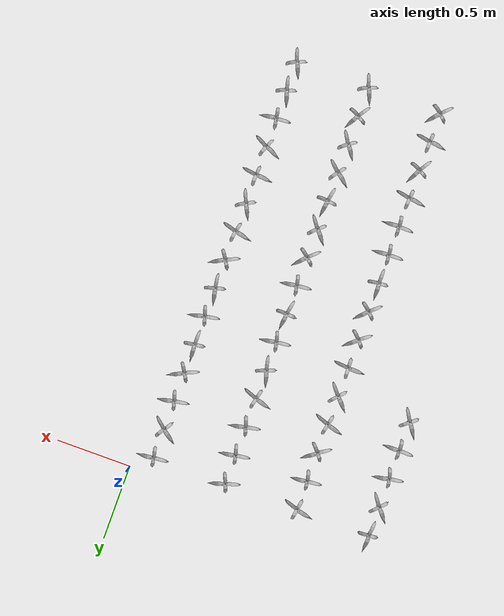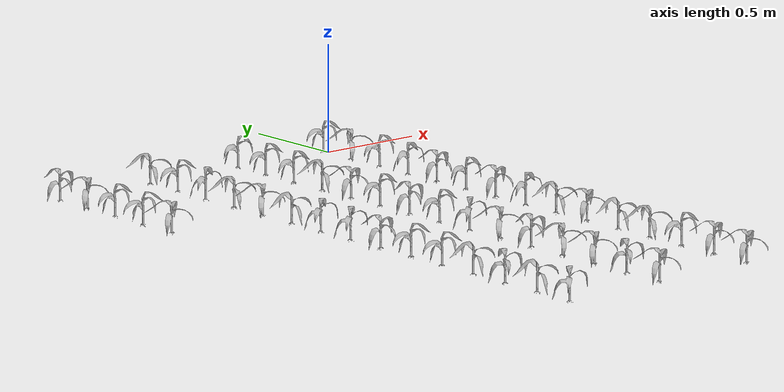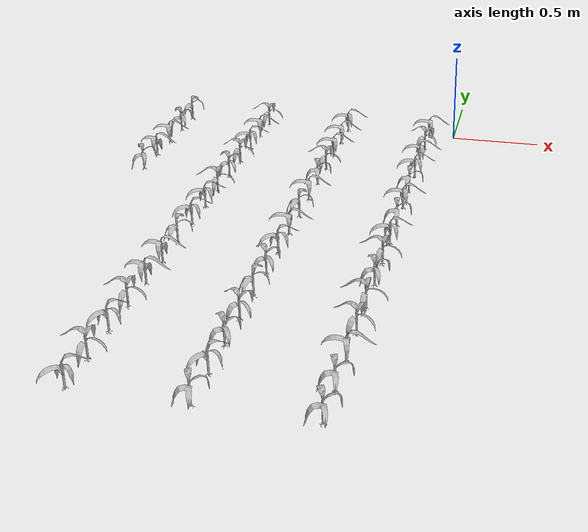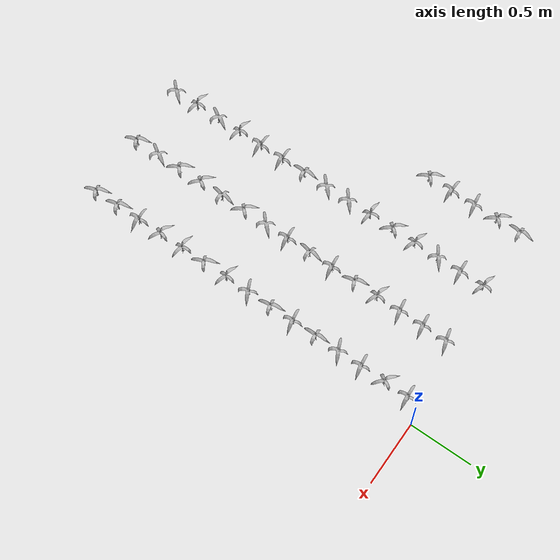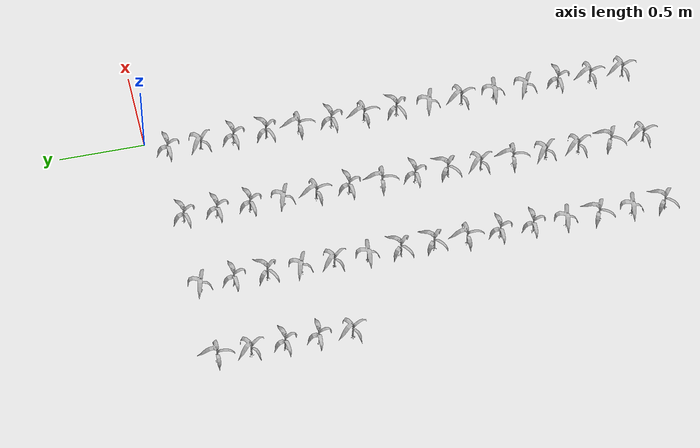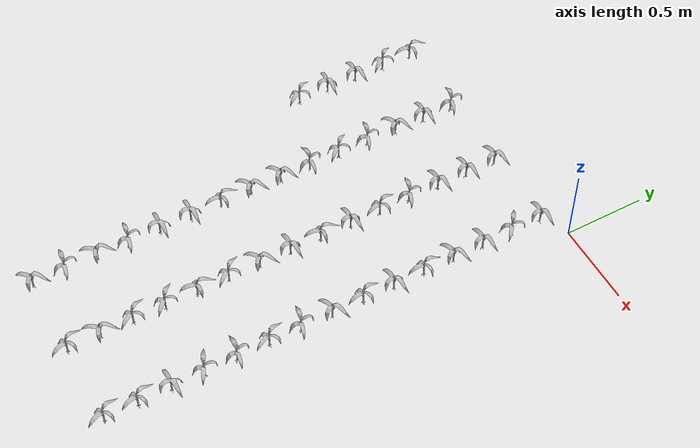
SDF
<sdf version="1.7">
 <world name="default">
  <model name="maize_-1.6134747127982658_-0.8999999999999995">
   <static>1</static>
   <link name="link">
    <inertial>
     <mass>0.2</mass>
     <inertia>
      <ixx>0.166667</ixx>
      <ixy>0</ixy>
      <ixz>0</ixz>
      <iyy>0.166667</iyy>
      <iyz>0</iyz>
      <izz>0.166667</izz>
     </inertia>
    </inertial>
    <collision name="collision">
     <geometry><mesh><uri>model://corn_3/meshes/corn.dae</uri><scale>0.25 0.25 0.25</scale></mesh></geometry>
     <surface>
      <friction><ode><mu>0</mu><mu2>0</mu2></ode></friction>
      <contact><ode><kp>0</kp><kd>0</kd><max_vel>0</max_vel><min_depth>0.002</min_depth></ode></contact>
     </surface>
    </collision>
    <visual name="visual">
     <geometry><mesh><uri>model://corn_3/meshes/corn.dae</uri><scale>0.25 0.25 0.25</scale></mesh></geometry>
    </visual>
    <velocity_decay><linear>0</linear><angular>0</angular></velocity_decay>
   </link>
   <pose>-1.61347 -0.9 0.05 0 -0 2.18641</pose>
  </model>
  <model name="maize_-1.6134747127982658_-0.7050000000000001">
   <static>1</static>
   <link name="link">
    <inertial>
     <mass>0.2</mass>
     <inertia>
      <ixx>0.166667</ixx>
      <ixy>0</ixy>
      <ixz>0</ixz>
      <iyy>0.166667</iyy>
      <iyz>0</iyz>
      <izz>0.166667</izz>
     </inertia>
    </inertial>
    <collision name="collision">
     <geometry><mesh><uri>model://corn_3/meshes/corn.dae</uri><scale>0.25 0.25 0.25</scale></mesh></geometry>
     <surface>
      <friction><ode><mu>0</mu><mu2>0</mu2></ode></friction>
      <contact><ode><kp>0</kp><kd>0</kd><max_vel>0</max_vel><min_depth>0.002</min_depth></ode></contact>
     </surface>
    </collision>
    <visual name="visual">
     <geometry><mesh><uri>model://corn_3/meshes/corn.dae</uri><scale>0.25 0.25 0.25</scale></mesh></geometry>
    </visual>
    <velocity_decay><linear>0</linear><angular>0</angular></velocity_decay>
   </link>
   <pose>-1.61347 -0.705 0.05 0 -0 0.046199</pose>
  </model>
  <model name="maize_-1.6134747127982658_-0.5099999999999998">
   <static>1</static>
   <link name="link">
    <inertial>
     <mass>0.2</mass>
     <inertia>
      <ixx>0.166667</ixx>
      <ixy>0</ixy>
      <ixz>0</ixz>
      <iyy>0.166667</iyy>
      <iyz>0</iyz>
      <izz>0.166667</izz>
     </inertia>
    </inertial>
    <collision name="collision">
     <geometry><mesh><uri>model://corn_3/meshes/corn.dae</uri><scale>0.25 0.25 0.25</scale></mesh></geometry>
     <surface>
      <friction><ode><mu>0</mu><mu2>0</mu2></ode></friction>
      <contact><ode><kp>0</kp><kd>0</kd><max_vel>0</max_vel><min_depth>0.002</min_depth></ode></contact>
     </surface>
    </collision>
    <visual name="visual">
     <geometry><mesh><uri>model://corn_3/meshes/corn.dae</uri><scale>0.25 0.25 0.25</scale></mesh></geometry>
    </visual>
    <velocity_decay><linear>0</linear><angular>0</angular></velocity_decay>
   </link>
   <pose>-1.61347 -0.51 0.05 0 -0 0.232341</pose>
  </model>
  <model name="maize_-1.6134747127982658_-0.3149999999999995">
   <static>1</static>
   <link name="link">
    <inertial>
     <mass>0.2</mass>
     <inertia>
      <ixx>0.166667</ixx>
      <ixy>0</ixy>
      <ixz>0</ixz>
      <iyy>0.166667</iyy>
      <iyz>0</iyz>
      <izz>0.166667</izz>
     </inertia>
    </inertial>
    <collision name="collision">
     <geometry><mesh><uri>model://corn_3/meshes/corn.dae</uri><scale>0.25 0.25 0.25</scale></mesh></geometry>
     <surface>
      <friction><ode><mu>0</mu><mu2>0</mu2></ode></friction>
      <contact><ode><kp>0</kp><kd>0</kd><max_vel>0</max_vel><min_depth>0.002</min_depth></ode></contact>
     </surface>
    </collision>
    <visual name="visual">
     <geometry><mesh><uri>model://corn_3/meshes/corn.dae</uri><scale>0.25 0.25 0.25</scale></mesh></geometry>
    </visual>
    <velocity_decay><linear>0</linear><angular>0</angular></velocity_decay>
   </link>
   <pose>-1.61347 -0.315 0.05 0 -0 2.28942</pose>
  </model>
  <model name="maize_-1.6134747127982658_-0.1200000000000001">
   <static>1</static>
   <link name="link">
    <inertial>
     <mass>0.2</mass>
     <inertia>
      <ixx>0.166667</ixx>
      <ixy>0</ixy>
      <ixz>0</ixz>
      <iyy>0.166667</iyy>
      <iyz>0</iyz>
      <izz>0.166667</izz>
     </inertia>
    </inertial>
    <collision name="collision">
     <geometry><mesh><uri>model://corn_3/meshes/corn.dae</uri><scale>0.25 0.25 0.25</scale></mesh></geometry>
     <surface>
      <friction><ode><mu>0</mu><mu2>0</mu2></ode></friction>
      <contact><ode><kp>0</kp><kd>0</kd><max_vel>0</max_vel><min_depth>0.002</min_depth></ode></contact>
     </surface>
    </collision>
    <visual name="visual">
     <geometry><mesh><uri>model://corn_3/meshes/corn.dae</uri><scale>0.25 0.25 0.25</scale></mesh></geometry>
    </visual>
    <velocity_decay><linear>0</linear><angular>0</angular></velocity_decay>
   </link>
   <pose>-1.61347 -0.12 0.05 0 -0 1.56511</pose>
  </model>
  <model name="maize_-1.1183337078909452_-2.8499999999999996">
   <static>1</static>
   <link name="link">
    <inertial>
     <mass>0.2</mass>
     <inertia>
      <ixx>0.166667</ixx>
      <ixy>0</ixy>
      <ixz>0</ixz>
      <iyy>0.166667</iyy>
      <iyz>0</iyz>
      <izz>0.166667</izz>
     </inertia>
    </inertial>
    <collision name="collision">
     <geometry><mesh><uri>model://corn_3/meshes/corn.dae</uri><scale>0.25 0.25 0.25</scale></mesh></geometry>
     <surface>
      <friction><ode><mu>0</mu><mu2>0</mu2></ode></friction>
      <contact><ode><kp>0</kp><kd>0</kd><max_vel>0</max_vel><min_depth>0.002</min_depth></ode></contact>
     </surface>
    </collision>
    <visual name="visual">
     <geometry><mesh><uri>model://corn_3/meshes/corn.dae</uri><scale>0.25 0.25 0.25</scale></mesh></geometry>
    </visual>
    <velocity_decay><linear>0</linear><angular>0</angular></velocity_decay>
   </link>
   <pose>-1.11833 -2.85 0.05 0 -0 0.887774</pose>
  </model>
  <model name="maize_-1.1183337078909452_-2.655">
   <static>1</static>
   <link name="link">
    <inertial>
     <mass>0.2</mass>
     <inertia>
      <ixx>0.166667</ixx>
      <ixy>0</ixy>
      <ixz>0</ixz>
      <iyy>0.166667</iyy>
      <iyz>0</iyz>
      <izz>0.166667</izz>
     </inertia>
    </inertial>
    <collision name="collision">
     <geometry><mesh><uri>model://corn_3/meshes/corn.dae</uri><scale>0.25 0.25 0.25</scale></mesh></geometry>
     <surface>
      <friction><ode><mu>0</mu><mu2>0</mu2></ode></friction>
      <contact><ode><kp>0</kp><kd>0</kd><max_vel>0</max_vel><min_depth>0.002</min_depth></ode></contact>
     </surface>
    </collision>
    <visual name="visual">
     <geometry><mesh><uri>model://corn_3/meshes/corn.dae</uri><scale>0.25 0.25 0.25</scale></mesh></geometry>
    </visual>
    <velocity_decay><linear>0</linear><angular>0</angular></velocity_decay>
   </link>
   <pose>-1.11833 -2.655 0.05 0 -0 3.03803</pose>
  </model>
  <model name="maize_-1.1183337078909452_-2.46">
   <static>1</static>
   <link name="link">
    <inertial>
     <mass>0.2</mass>
     <inertia>
      <ixx>0.166667</ixx>
      <ixy>0</ixy>
      <ixz>0</ixz>
      <iyy>0.166667</iyy>
      <iyz>0</iyz>
      <izz>0.166667</izz>
     </inertia>
    </inertial>
    <collision name="collision">
     <geometry><mesh><uri>model://corn_3/meshes/corn.dae</uri><scale>0.25 0.25 0.25</scale></mesh></geometry>
     <surface>
      <friction><ode><mu>0</mu><mu2>0</mu2></ode></friction>
      <contact><ode><kp>0</kp><kd>0</kd><max_vel>0</max_vel><min_depth>0.002</min_depth></ode></contact>
     </surface>
    </collision>
    <visual name="visual">
     <geometry><mesh><uri>model://corn_3/meshes/corn.dae</uri><scale>0.25 0.25 0.25</scale></mesh></geometry>
    </visual>
    <velocity_decay><linear>0</linear><angular>0</angular></velocity_decay>
   </link>
   <pose>-1.11833 -2.46 0.05 0 -0 1.11207</pose>
  </model>
  <model name="maize_-1.1183337078909452_-2.2649999999999997">
   <static>1</static>
   <link name="link">
    <inertial>
     <mass>0.2</mass>
     <inertia>
      <ixx>0.166667</ixx>
      <ixy>0</ixy>
      <ixz>0</ixz>
      <iyy>0.166667</iyy>
      <iyz>0</iyz>
      <izz>0.166667</izz>
     </inertia>
    </inertial>
    <collision name="collision">
     <geometry><mesh><uri>model://corn_3/meshes/corn.dae</uri><scale>0.25 0.25 0.25</scale></mesh></geometry>
     <surface>
      <friction><ode><mu>0</mu><mu2>0</mu2></ode></friction>
      <contact><ode><kp>0</kp><kd>0</kd><max_vel>0</max_vel><min_depth>0.002</min_depth></ode></contact>
     </surface>
    </collision>
    <visual name="visual">
     <geometry><mesh><uri>model://corn_3/meshes/corn.dae</uri><scale>0.25 0.25 0.25</scale></mesh></geometry>
    </visual>
    <velocity_decay><linear>0</linear><angular>0</angular></velocity_decay>
   </link>
   <pose>-1.11833 -2.265 0.05 0 -0 3.02245</pose>
  </model>
  <model name="maize_-1.1183337078909452_-2.07">
   <static>1</static>
   <link name="link">
    <inertial>
     <mass>0.2</mass>
     <inertia>
      <ixx>0.166667</ixx>
      <ixy>0</ixy>
      <ixz>0</ixz>
      <iyy>0.166667</iyy>
      <iyz>0</iyz>
      <izz>0.166667</izz>
     </inertia>
    </inertial>
    <collision name="collision">
     <geometry><mesh><uri>model://corn_3/meshes/corn.dae</uri><scale>0.25 0.25 0.25</scale></mesh></geometry>
     <surface>
      <friction><ode><mu>0</mu><mu2>0</mu2></ode></friction>
      <contact><ode><kp>0</kp><kd>0</kd><max_vel>0</max_vel><min_depth>0.002</min_depth></ode></contact>
     </surface>
    </collision>
    <visual name="visual">
     <geometry><mesh><uri>model://corn_3/meshes/corn.dae</uri><scale>0.25 0.25 0.25</scale></mesh></geometry>
    </visual>
    <velocity_decay><linear>0</linear><angular>0</angular></velocity_decay>
   </link>
   <pose>-1.11833 -2.07 0.05 0 -0 0.065517</pose>
  </model>
  <model name="maize_-1.1183337078909452_-1.8749999999999996">
   <static>1</static>
   <link name="link">
    <inertial>
     <mass>0.2</mass>
     <inertia>
      <ixx>0.166667</ixx>
      <ixy>0</ixy>
      <ixz>0</ixz>
      <iyy>0.166667</iyy>
      <iyz>0</iyz>
      <izz>0.166667</izz>
     </inertia>
    </inertial>
    <collision name="collision">
     <geometry><mesh><uri>model://corn_3/meshes/corn.dae</uri><scale>0.25 0.25 0.25</scale></mesh></geometry>
     <surface>
      <friction><ode><mu>0</mu><mu2>0</mu2></ode></friction>
      <contact><ode><kp>0</kp><kd>0</kd><max_vel>0</max_vel><min_depth>0.002</min_depth></ode></contact>
     </surface>
    </collision>
    <visual name="visual">
     <geometry><mesh><uri>model://corn_3/meshes/corn.dae</uri><scale>0.25 0.25 0.25</scale></mesh></geometry>
    </visual>
    <velocity_decay><linear>0</linear><angular>0</angular></velocity_decay>
   </link>
   <pose>-1.11833 -1.875 0.05 0 -0 0.109168</pose>
  </model>
  <model name="maize_-1.1183337078909452_-1.6799999999999997">
   <static>1</static>
   <link name="link">
    <inertial>
     <mass>0.2</mass>
     <inertia>
      <ixx>0.166667</ixx>
      <ixy>0</ixy>
      <ixz>0</ixz>
      <iyy>0.166667</iyy>
      <iyz>0</iyz>
      <izz>0.166667</izz>
     </inertia>
    </inertial>
    <collision name="collision">
     <geometry><mesh><uri>model://corn_3/meshes/corn.dae</uri><scale>0.25 0.25 0.25</scale></mesh></geometry>
     <surface>
      <friction><ode><mu>0</mu><mu2>0</mu2></ode></friction>
      <contact><ode><kp>0</kp><kd>0</kd><max_vel>0</max_vel><min_depth>0.002</min_depth></ode></contact>
     </surface>
    </collision>
    <visual name="visual">
     <geometry><mesh><uri>model://corn_3/meshes/corn.dae</uri><scale>0.25 0.25 0.25</scale></mesh></geometry>
    </visual>
    <velocity_decay><linear>0</linear><angular>0</angular></velocity_decay>
   </link>
   <pose>-1.11833 -1.68 0.05 0 -0 1.6509</pose>
  </model>
  <model name="maize_-1.1183337078909452_-1.4849999999999999">
   <static>1</static>
   <link name="link">
    <inertial>
     <mass>0.2</mass>
     <inertia>
      <ixx>0.166667</ixx>
      <ixy>0</ixy>
      <ixz>0</ixz>
      <iyy>0.166667</iyy>
      <iyz>0</iyz>
      <izz>0.166667</izz>
     </inertia>
    </inertial>
    <collision name="collision">
     <geometry><mesh><uri>model://corn_3/meshes/corn.dae</uri><scale>0.25 0.25 0.25</scale></mesh></geometry>
     <surface>
      <friction><ode><mu>0</mu><mu2>0</mu2></ode></friction>
      <contact><ode><kp>0</kp><kd>0</kd><max_vel>0</max_vel><min_depth>0.002</min_depth></ode></contact>
     </surface>
    </collision>
    <visual name="visual">
     <geometry><mesh><uri>model://corn_3/meshes/corn.dae</uri><scale>0.25 0.25 0.25</scale></mesh></geometry>
    </visual>
    <velocity_decay><linear>0</linear><angular>0</angular></velocity_decay>
   </link>
   <pose>-1.11833 -1.485 0.05 0 -0 0.815342</pose>
  </model>
  <model name="maize_-1.1183337078909452_-1.2899999999999996">
   <static>1</static>
   <link name="link">
    <inertial>
     <mass>0.2</mass>
     <inertia>
      <ixx>0.166667</ixx>
      <ixy>0</ixy>
      <ixz>0</ixz>
      <iyy>0.166667</iyy>
      <iyz>0</iyz>
      <izz>0.166667</izz>
     </inertia>
    </inertial>
    <collision name="collision">
     <geometry><mesh><uri>model://corn_3/meshes/corn.dae</uri><scale>0.25 0.25 0.25</scale></mesh></geometry>
     <surface>
      <friction><ode><mu>0</mu><mu2>0</mu2></ode></friction>
      <contact><ode><kp>0</kp><kd>0</kd><max_vel>0</max_vel><min_depth>0.002</min_depth></ode></contact>
     </surface>
    </collision>
    <visual name="visual">
     <geometry><mesh><uri>model://corn_3/meshes/corn.dae</uri><scale>0.25 0.25 0.25</scale></mesh></geometry>
    </visual>
    <velocity_decay><linear>0</linear><angular>0</angular></velocity_decay>
   </link>
   <pose>-1.11833 -1.29 0.05 0 -0 0.741413</pose>
  </model>
  <model name="maize_-1.1183337078909452_-1.0949999999999998">
   <static>1</static>
   <link name="link">
    <inertial>
     <mass>0.2</mass>
     <inertia>
      <ixx>0.166667</ixx>
      <ixy>0</ixy>
      <ixz>0</ixz>
      <iyy>0.166667</iyy>
      <iyz>0</iyz>
      <izz>0.166667</izz>
     </inertia>
    </inertial>
    <collision name="collision">
     <geometry><mesh><uri>model://corn_3/meshes/corn.dae</uri><scale>0.25 0.25 0.25</scale></mesh></geometry>
     <surface>
      <friction><ode><mu>0</mu><mu2>0</mu2></ode></friction>
      <contact><ode><kp>0</kp><kd>0</kd><max_vel>0</max_vel><min_depth>0.002</min_depth></ode></contact>
     </surface>
    </collision>
    <visual name="visual">
     <geometry><mesh><uri>model://corn_3/meshes/corn.dae</uri><scale>0.25 0.25 0.25</scale></mesh></geometry>
    </visual>
    <velocity_decay><linear>0</linear><angular>0</angular></velocity_decay>
   </link>
   <pose>-1.11833 -1.095 0.05 0 -0 3.13257</pose>
  </model>
  <model name="maize_-1.1183337078909452_-0.8999999999999995">
   <static>1</static>
   <link name="link">
    <inertial>
     <mass>0.2</mass>
     <inertia>
      <ixx>0.166667</ixx>
      <ixy>0</ixy>
      <ixz>0</ixz>
      <iyy>0.166667</iyy>
      <iyz>0</iyz>
      <izz>0.166667</izz>
     </inertia>
    </inertial>
    <collision name="collision">
     <geometry><mesh><uri>model://corn_3/meshes/corn.dae</uri><scale>0.25 0.25 0.25</scale></mesh></geometry>
     <surface>
      <friction><ode><mu>0</mu><mu2>0</mu2></ode></friction>
      <contact><ode><kp>0</kp><kd>0</kd><max_vel>0</max_vel><min_depth>0.002</min_depth></ode></contact>
     </surface>
    </collision>
    <visual name="visual">
     <geometry><mesh><uri>model://corn_3/meshes/corn.dae</uri><scale>0.25 0.25 0.25</scale></mesh></geometry>
    </visual>
    <velocity_decay><linear>0</linear><angular>0</angular></velocity_decay>
   </link>
   <pose>-1.11833 -0.9 0.05 0 -0 2.3482</pose>
  </model>
  <model name="maize_-1.1183337078909452_-0.7050000000000001">
   <static>1</static>
   <link name="link">
    <inertial>
     <mass>0.2</mass>
     <inertia>
      <ixx>0.166667</ixx>
      <ixy>0</ixy>
      <ixz>0</ixz>
      <iyy>0.166667</iyy>
      <iyz>0</iyz>
      <izz>0.166667</izz>
     </inertia>
    </inertial>
    <collision name="collision">
     <geometry><mesh><uri>model://corn_3/meshes/corn.dae</uri><scale>0.25 0.25 0.25</scale></mesh></geometry>
     <surface>
      <friction><ode><mu>0</mu><mu2>0</mu2></ode></friction>
      <contact><ode><kp>0</kp><kd>0</kd><max_vel>0</max_vel><min_depth>0.002</min_depth></ode></contact>
     </surface>
    </collision>
    <visual name="visual">
     <geometry><mesh><uri>model://corn_3/meshes/corn.dae</uri><scale>0.25 0.25 0.25</scale></mesh></geometry>
    </visual>
    <velocity_decay><linear>0</linear><angular>0</angular></velocity_decay>
   </link>
   <pose>-1.11833 -0.705 0.05 0 -0 2.87271</pose>
  </model>
  <model name="maize_-1.1183337078909452_-0.5099999999999998">
   <static>1</static>
   <link name="link">
    <inertial>
     <mass>0.2</mass>
     <inertia>
      <ixx>0.166667</ixx>
      <ixy>0</ixy>
      <ixz>0</ixz>
      <iyy>0.166667</iyy>
      <iyz>0</iyz>
      <izz>0.166667</izz>
     </inertia>
    </inertial>
    <collision name="collision">
     <geometry><mesh><uri>model://corn_3/meshes/corn.dae</uri><scale>0.25 0.25 0.25</scale></mesh></geometry>
     <surface>
      <friction><ode><mu>0</mu><mu2>0</mu2></ode></friction>
      <contact><ode><kp>0</kp><kd>0</kd><max_vel>0</max_vel><min_depth>0.002</min_depth></ode></contact>
     </surface>
    </collision>
    <visual name="visual">
     <geometry><mesh><uri>model://corn_3/meshes/corn.dae</uri><scale>0.25 0.25 0.25</scale></mesh></geometry>
    </visual>
    <velocity_decay><linear>0</linear><angular>0</angular></velocity_decay>
   </link>
   <pose>-1.11833 -0.51 0.05 0 -0 0.669661</pose>
  </model>
  <model name="maize_-1.1183337078909452_-0.3149999999999995">
   <static>1</static>
   <link name="link">
    <inertial>
     <mass>0.2</mass>
     <inertia>
      <ixx>0.166667</ixx>
      <ixy>0</ixy>
      <ixz>0</ixz>
      <iyy>0.166667</iyy>
      <iyz>0</iyz>
      <izz>0.166667</izz>
     </inertia>
    </inertial>
    <collision name="collision">
     <geometry><mesh><uri>model://corn_3/meshes/corn.dae</uri><scale>0.25 0.25 0.25</scale></mesh></geometry>
     <surface>
      <friction><ode><mu>0</mu><mu2>0</mu2></ode></friction>
      <contact><ode><kp>0</kp><kd>0</kd><max_vel>0</max_vel><min_depth>0.002</min_depth></ode></contact>
     </surface>
    </collision>
    <visual name="visual">
     <geometry><mesh><uri>model://corn_3/meshes/corn.dae</uri><scale>0.25 0.25 0.25</scale></mesh></geometry>
    </visual>
    <velocity_decay><linear>0</linear><angular>0</angular></velocity_decay>
   </link>
   <pose>-1.11833 -0.315 0.05 0 -0 0.160856</pose>
  </model>
  <model name="maize_-1.1183337078909452_-0.1200000000000001">
   <static>1</static>
   <link name="link">
    <inertial>
     <mass>0.2</mass>
     <inertia>
      <ixx>0.166667</ixx>
      <ixy>0</ixy>
      <ixz>0</ixz>
      <iyy>0.166667</iyy>
      <iyz>0</iyz>
      <izz>0.166667</izz>
     </inertia>
    </inertial>
    <collision name="collision">
     <geometry><mesh><uri>model://corn_3/meshes/corn.dae</uri><scale>0.25 0.25 0.25</scale></mesh></geometry>
     <surface>
      <friction><ode><mu>0</mu><mu2>0</mu2></ode></friction>
      <contact><ode><kp>0</kp><kd>0</kd><max_vel>0</max_vel><min_depth>0.002</min_depth></ode></contact>
     </surface>
    </collision>
    <visual name="visual">
     <geometry><mesh><uri>model://corn_3/meshes/corn.dae</uri><scale>0.25 0.25 0.25</scale></mesh></geometry>
    </visual>
    <velocity_decay><linear>0</linear><angular>0</angular></velocity_decay>
   </link>
   <pose>-1.11833 -0.12 0.05 0 -0 2.91978</pose>
  </model>
  <model name="maize_-0.6239370944114593_-2.8499999999999996">
   <static>1</static>
   <link name="link">
    <inertial>
     <mass>0.2</mass>
     <inertia>
      <ixx>0.166667</ixx>
      <ixy>0</ixy>
      <ixz>0</ixz>
      <iyy>0.166667</iyy>
      <iyz>0</iyz>
      <izz>0.166667</izz>
     </inertia>
    </inertial>
    <collision name="collision">
     <geometry><mesh><uri>model://corn_3/meshes/corn.dae</uri><scale>0.25 0.25 0.25</scale></mesh></geometry>
     <surface>
      <friction><ode><mu>0</mu><mu2>0</mu2></ode></friction>
      <contact><ode><kp>0</kp><kd>0</kd><max_vel>0</max_vel><min_depth>0.002</min_depth></ode></contact>
     </surface>
    </collision>
    <visual name="visual">
     <geometry><mesh><uri>model://corn_3/meshes/corn.dae</uri><scale>0.25 0.25 0.25</scale></mesh></geometry>
    </visual>
    <velocity_decay><linear>0</linear><angular>0</angular></velocity_decay>
   </link>
   <pose>-0.623937 -2.85 0.05 0 -0 2.00228</pose>
  </model>
  <model name="maize_-0.6239370944114593_-2.655">
   <static>1</static>
   <link name="link">
    <inertial>
     <mass>0.2</mass>
     <inertia>
      <ixx>0.166667</ixx>
      <ixy>0</ixy>
      <ixz>0</ixz>
      <iyy>0.166667</iyy>
      <iyz>0</iyz>
      <izz>0.166667</izz>
     </inertia>
    </inertial>
    <collision name="collision">
     <geometry><mesh><uri>model://corn_3/meshes/corn.dae</uri><scale>0.25 0.25 0.25</scale></mesh></geometry>
     <surface>
      <friction><ode><mu>0</mu><mu2>0</mu2></ode></friction>
      <contact><ode><kp>0</kp><kd>0</kd><max_vel>0</max_vel><min_depth>0.002</min_depth></ode></contact>
     </surface>
    </collision>
    <visual name="visual">
     <geometry><mesh><uri>model://corn_3/meshes/corn.dae</uri><scale>0.25 0.25 0.25</scale></mesh></geometry>
    </visual>
    <velocity_decay><linear>0</linear><angular>0</angular></velocity_decay>
   </link>
   <pose>-0.623937 -2.655 0.05 0 -0 1.08339</pose>
  </model>
  <model name="maize_-0.6239370944114593_-2.46">
   <static>1</static>
   <link name="link">
    <inertial>
     <mass>0.2</mass>
     <inertia>
      <ixx>0.166667</ixx>
      <ixy>0</ixy>
      <ixz>0</ixz>
      <iyy>0.166667</iyy>
      <iyz>0</iyz>
      <izz>0.166667</izz>
     </inertia>
    </inertial>
    <collision name="collision">
     <geometry><mesh><uri>model://corn_3/meshes/corn.dae</uri><scale>0.25 0.25 0.25</scale></mesh></geometry>
     <surface>
      <friction><ode><mu>0</mu><mu2>0</mu2></ode></friction>
      <contact><ode><kp>0</kp><kd>0</kd><max_vel>0</max_vel><min_depth>0.002</min_depth></ode></contact>
     </surface>
    </collision>
    <visual name="visual">
     <geometry><mesh><uri>model://corn_3/meshes/corn.dae</uri><scale>0.25 0.25 0.25</scale></mesh></geometry>
    </visual>
    <velocity_decay><linear>0</linear><angular>0</angular></velocity_decay>
   </link>
   <pose>-0.623937 -2.46 0.05 0 -0 2.21587</pose>
  </model>
  <model name="maize_-0.6239370944114593_-2.2649999999999997">
   <static>1</static>
   <link name="link">
    <inertial>
     <mass>0.2</mass>
     <inertia>
      <ixx>0.166667</ixx>
      <ixy>0</ixy>
      <ixz>0</ixz>
      <iyy>0.166667</iyy>
      <iyz>0</iyz>
      <izz>0.166667</izz>
     </inertia>
    </inertial>
    <collision name="collision">
     <geometry><mesh><uri>model://corn_3/meshes/corn.dae</uri><scale>0.25 0.25 0.25</scale></mesh></geometry>
     <surface>
      <friction><ode><mu>0</mu><mu2>0</mu2></ode></friction>
      <contact><ode><kp>0</kp><kd>0</kd><max_vel>0</max_vel><min_depth>0.002</min_depth></ode></contact>
     </surface>
    </collision>
    <visual name="visual">
     <geometry><mesh><uri>model://corn_3/meshes/corn.dae</uri><scale>0.25 0.25 0.25</scale></mesh></geometry>
    </visual>
    <velocity_decay><linear>0</linear><angular>0</angular></velocity_decay>
   </link>
   <pose>-0.623937 -2.265 0.05 0 -0 2.48705</pose>
  </model>
  <model name="maize_-0.6239370944114593_-2.07">
   <static>1</static>
   <link name="link">
    <inertial>
     <mass>0.2</mass>
     <inertia>
      <ixx>0.166667</ixx>
      <ixy>0</ixy>
      <ixz>0</ixz>
      <iyy>0.166667</iyy>
      <iyz>0</iyz>
      <izz>0.166667</izz>
     </inertia>
    </inertial>
    <collision name="collision">
     <geometry><mesh><uri>model://corn_3/meshes/corn.dae</uri><scale>0.25 0.25 0.25</scale></mesh></geometry>
     <surface>
      <friction><ode><mu>0</mu><mu2>0</mu2></ode></friction>
      <contact><ode><kp>0</kp><kd>0</kd><max_vel>0</max_vel><min_depth>0.002</min_depth></ode></contact>
     </surface>
    </collision>
    <visual name="visual">
     <geometry><mesh><uri>model://corn_3/meshes/corn.dae</uri><scale>0.25 0.25 0.25</scale></mesh></geometry>
    </visual>
    <velocity_decay><linear>0</linear><angular>0</angular></velocity_decay>
   </link>
   <pose>-0.623937 -2.07 0.05 0 -0 1.47762</pose>
  </model>
  <model name="maize_-0.6239370944114593_-1.8749999999999996">
   <static>1</static>
   <link name="link">
    <inertial>
     <mass>0.2</mass>
     <inertia>
      <ixx>0.166667</ixx>
      <ixy>0</ixy>
      <ixz>0</ixz>
      <iyy>0.166667</iyy>
      <iyz>0</iyz>
      <izz>0.166667</izz>
     </inertia>
    </inertial>
    <collision name="collision">
     <geometry><mesh><uri>model://corn_3/meshes/corn.dae</uri><scale>0.25 0.25 0.25</scale></mesh></geometry>
     <surface>
      <friction><ode><mu>0</mu><mu2>0</mu2></ode></friction>
      <contact><ode><kp>0</kp><kd>0</kd><max_vel>0</max_vel><min_depth>0.002</min_depth></ode></contact>
     </surface>
    </collision>
    <visual name="visual">
     <geometry><mesh><uri>model://corn_3/meshes/corn.dae</uri><scale>0.25 0.25 0.25</scale></mesh></geometry>
    </visual>
    <velocity_decay><linear>0</linear><angular>0</angular></velocity_decay>
   </link>
   <pose>-0.623937 -1.875 0.05 0 -0 2.29822</pose>
  </model>
  <model name="maize_-0.6239370944114593_-1.6799999999999997">
   <static>1</static>
   <link name="link">
    <inertial>
     <mass>0.2</mass>
     <inertia>
      <ixx>0.166667</ixx>
      <ixy>0</ixy>
      <ixz>0</ixz>
      <iyy>0.166667</iyy>
      <iyz>0</iyz>
      <izz>0.166667</izz>
     </inertia>
    </inertial>
    <collision name="collision">
     <geometry><mesh><uri>model://corn_3/meshes/corn.dae</uri><scale>0.25 0.25 0.25</scale></mesh></geometry>
     <surface>
      <friction><ode><mu>0</mu><mu2>0</mu2></ode></friction>
      <contact><ode><kp>0</kp><kd>0</kd><max_vel>0</max_vel><min_depth>0.002</min_depth></ode></contact>
     </surface>
    </collision>
    <visual name="visual">
     <geometry><mesh><uri>model://corn_3/meshes/corn.dae</uri><scale>0.25 0.25 0.25</scale></mesh></geometry>
    </visual>
    <velocity_decay><linear>0</linear><angular>0</angular></velocity_decay>
   </link>
   <pose>-0.623937 -1.68 0.05 0 -0 0.843252</pose>
  </model>
  <model name="maize_-0.6239370944114593_-1.4849999999999999">
   <static>1</static>
   <link name="link">
    <inertial>
     <mass>0.2</mass>
     <inertia>
      <ixx>0.166667</ixx>
      <ixy>0</ixy>
      <ixz>0</ixz>
      <iyy>0.166667</iyy>
      <iyz>0</iyz>
      <izz>0.166667</izz>
     </inertia>
    </inertial>
    <collision name="collision">
     <geometry><mesh><uri>model://corn_3/meshes/corn.dae</uri><scale>0.25 0.25 0.25</scale></mesh></geometry>
     <surface>
      <friction><ode><mu>0</mu><mu2>0</mu2></ode></friction>
      <contact><ode><kp>0</kp><kd>0</kd><max_vel>0</max_vel><min_depth>0.002</min_depth></ode></contact>
     </surface>
    </collision>
    <visual name="visual">
     <geometry><mesh><uri>model://corn_3/meshes/corn.dae</uri><scale>0.25 0.25 0.25</scale></mesh></geometry>
    </visual>
    <velocity_decay><linear>0</linear><angular>0</angular></velocity_decay>
   </link>
   <pose>-0.623937 -1.485 0.05 0 -0 0.183698</pose>
  </model>
  <model name="maize_-0.6239370944114593_-1.2899999999999996">
   <static>1</static>
   <link name="link">
    <inertial>
     <mass>0.2</mass>
     <inertia>
      <ixx>0.166667</ixx>
      <ixy>0</ixy>
      <ixz>0</ixz>
      <iyy>0.166667</iyy>
      <iyz>0</iyz>
      <izz>0.166667</izz>
     </inertia>
    </inertial>
    <collision name="collision">
     <geometry><mesh><uri>model://corn_3/meshes/corn.dae</uri><scale>0.25 0.25 0.25</scale></mesh></geometry>
     <surface>
      <friction><ode><mu>0</mu><mu2>0</mu2></ode></friction>
      <contact><ode><kp>0</kp><kd>0</kd><max_vel>0</max_vel><min_depth>0.002</min_depth></ode></contact>
     </surface>
    </collision>
    <visual name="visual">
     <geometry><mesh><uri>model://corn_3/meshes/corn.dae</uri><scale>0.25 0.25 0.25</scale></mesh></geometry>
    </visual>
    <velocity_decay><linear>0</linear><angular>0</angular></velocity_decay>
   </link>
   <pose>-0.623937 -1.29 0.05 0 -0 1.48832</pose>
  </model>
  <model name="maize_-0.6239370944114593_-1.0949999999999998">
   <static>1</static>
   <link name="link">
    <inertial>
     <mass>0.2</mass>
     <inertia>
      <ixx>0.166667</ixx>
      <ixy>0</ixy>
      <ixz>0</ixz>
      <iyy>0.166667</iyy>
      <iyz>0</iyz>
      <izz>0.166667</izz>
     </inertia>
    </inertial>
    <collision name="collision">
     <geometry><mesh><uri>model://corn_3/meshes/corn.dae</uri><scale>0.25 0.25 0.25</scale></mesh></geometry>
     <surface>
      <friction><ode><mu>0</mu><mu2>0</mu2></ode></friction>
      <contact><ode><kp>0</kp><kd>0</kd><max_vel>0</max_vel><min_depth>0.002</min_depth></ode></contact>
     </surface>
    </collision>
    <visual name="visual">
     <geometry><mesh><uri>model://corn_3/meshes/corn.dae</uri><scale>0.25 0.25 0.25</scale></mesh></geometry>
    </visual>
    <velocity_decay><linear>0</linear><angular>0</angular></velocity_decay>
   </link>
   <pose>-0.623937 -1.095 0.05 0 -0 0.203506</pose>
  </model>
  <model name="maize_-0.6239370944114593_-0.8999999999999995">
   <static>1</static>
   <link name="link">
    <inertial>
     <mass>0.2</mass>
     <inertia>
      <ixx>0.166667</ixx>
      <ixy>0</ixy>
      <ixz>0</ixz>
      <iyy>0.166667</iyy>
      <iyz>0</iyz>
      <izz>0.166667</izz>
     </inertia>
    </inertial>
    <collision name="collision">
     <geometry><mesh><uri>model://corn_3/meshes/corn.dae</uri><scale>0.25 0.25 0.25</scale></mesh></geometry>
     <surface>
      <friction><ode><mu>0</mu><mu2>0</mu2></ode></friction>
      <contact><ode><kp>0</kp><kd>0</kd><max_vel>0</max_vel><min_depth>0.002</min_depth></ode></contact>
     </surface>
    </collision>
    <visual name="visual">
     <geometry><mesh><uri>model://corn_3/meshes/corn.dae</uri><scale>0.25 0.25 0.25</scale></mesh></geometry>
    </visual>
    <velocity_decay><linear>0</linear><angular>0</angular></velocity_decay>
   </link>
   <pose>-0.623937 -0.9 0.05 0 -0 1.88865</pose>
  </model>
  <model name="maize_-0.6239370944114593_-0.7050000000000001">
   <static>1</static>
   <link name="link">
    <inertial>
     <mass>0.2</mass>
     <inertia>
      <ixx>0.166667</ixx>
      <ixy>0</ixy>
      <ixz>0</ixz>
      <iyy>0.166667</iyy>
      <iyz>0</iyz>
      <izz>0.166667</izz>
     </inertia>
    </inertial>
    <collision name="collision">
     <geometry><mesh><uri>model://corn_3/meshes/corn.dae</uri><scale>0.25 0.25 0.25</scale></mesh></geometry>
     <surface>
      <friction><ode><mu>0</mu><mu2>0</mu2></ode></friction>
      <contact><ode><kp>0</kp><kd>0</kd><max_vel>0</max_vel><min_depth>0.002</min_depth></ode></contact>
     </surface>
    </collision>
    <visual name="visual">
     <geometry><mesh><uri>model://corn_3/meshes/corn.dae</uri><scale>0.25 0.25 0.25</scale></mesh></geometry>
    </visual>
    <velocity_decay><linear>0</linear><angular>0</angular></velocity_decay>
   </link>
   <pose>-0.623937 -0.705 0.05 0 -0 2.86967</pose>
  </model>
  <model name="maize_-0.6239370944114593_-0.5099999999999998">
   <static>1</static>
   <link name="link">
    <inertial>
     <mass>0.2</mass>
     <inertia>
      <ixx>0.166667</ixx>
      <ixy>0</ixy>
      <ixz>0</ixz>
      <iyy>0.166667</iyy>
      <iyz>0</iyz>
      <izz>0.166667</izz>
     </inertia>
    </inertial>
    <collision name="collision">
     <geometry><mesh><uri>model://corn_3/meshes/corn.dae</uri><scale>0.25 0.25 0.25</scale></mesh></geometry>
     <surface>
      <friction><ode><mu>0</mu><mu2>0</mu2></ode></friction>
      <contact><ode><kp>0</kp><kd>0</kd><max_vel>0</max_vel><min_depth>0.002</min_depth></ode></contact>
     </surface>
    </collision>
    <visual name="visual">
     <geometry><mesh><uri>model://corn_3/meshes/corn.dae</uri><scale>0.25 0.25 0.25</scale></mesh></geometry>
    </visual>
    <velocity_decay><linear>0</linear><angular>0</angular></velocity_decay>
   </link>
   <pose>-0.623937 -0.51 0.05 0 -0 0.264641</pose>
  </model>
  <model name="maize_-0.6239370944114593_-0.3149999999999995">
   <static>1</static>
   <link name="link">
    <inertial>
     <mass>0.2</mass>
     <inertia>
      <ixx>0.166667</ixx>
      <ixy>0</ixy>
      <ixz>0</ixz>
      <iyy>0.166667</iyy>
      <iyz>0</iyz>
      <izz>0.166667</izz>
     </inertia>
    </inertial>
    <collision name="collision">
     <geometry><mesh><uri>model://corn_3/meshes/corn.dae</uri><scale>0.25 0.25 0.25</scale></mesh></geometry>
     <surface>
      <friction><ode><mu>0</mu><mu2>0</mu2></ode></friction>
      <contact><ode><kp>0</kp><kd>0</kd><max_vel>0</max_vel><min_depth>0.002</min_depth></ode></contact>
     </surface>
    </collision>
    <visual name="visual">
     <geometry><mesh><uri>model://corn_3/meshes/corn.dae</uri><scale>0.25 0.25 0.25</scale></mesh></geometry>
    </visual>
    <velocity_decay><linear>0</linear><angular>0</angular></velocity_decay>
   </link>
   <pose>-0.623937 -0.315 0.05 0 -0 0.214819</pose>
  </model>
  <model name="maize_-0.6239370944114593_-0.1200000000000001">
   <static>1</static>
   <link name="link">
    <inertial>
     <mass>0.2</mass>
     <inertia>
      <ixx>0.166667</ixx>
      <ixy>0</ixy>
      <ixz>0</ixz>
      <iyy>0.166667</iyy>
      <iyz>0</iyz>
      <izz>0.166667</izz>
     </inertia>
    </inertial>
    <collision name="collision">
     <geometry><mesh><uri>model://corn_3/meshes/corn.dae</uri><scale>0.25 0.25 0.25</scale></mesh></geometry>
     <surface>
      <friction><ode><mu>0</mu><mu2>0</mu2></ode></friction>
      <contact><ode><kp>0</kp><kd>0</kd><max_vel>0</max_vel><min_depth>0.002</min_depth></ode></contact>
     </surface>
    </collision>
    <visual name="visual">
     <geometry><mesh><uri>model://corn_3/meshes/corn.dae</uri><scale>0.25 0.25 0.25</scale></mesh></geometry>
    </visual>
    <velocity_decay><linear>0</linear><angular>0</angular></velocity_decay>
   </link>
   <pose>-0.623937 -0.12 0.05 0 -0 0.345677</pose>
  </model>
  <model name="maize_-0.130284034289482_-2.8499999999999996">
   <static>1</static>
   <link name="link">
    <inertial>
     <mass>0.2</mass>
     <inertia>
      <ixx>0.166667</ixx>
      <ixy>0</ixy>
      <ixz>0</ixz>
      <iyy>0.166667</iyy>
      <iyz>0</iyz>
      <izz>0.166667</izz>
     </inertia>
    </inertial>
    <collision name="collision">
     <geometry><mesh><uri>model://corn_3/meshes/corn.dae</uri><scale>0.25 0.25 0.25</scale></mesh></geometry>
     <surface>
      <friction><ode><mu>0</mu><mu2>0</mu2></ode></friction>
      <contact><ode><kp>0</kp><kd>0</kd><max_vel>0</max_vel><min_depth>0.002</min_depth></ode></contact>
     </surface>
    </collision>
    <visual name="visual">
     <geometry><mesh><uri>model://corn_3/meshes/corn.dae</uri><scale>0.25 0.25 0.25</scale></mesh></geometry>
    </visual>
    <velocity_decay><linear>0</linear><angular>0</angular></velocity_decay>
   </link>
   <pose>-0.130284 -2.85 0.05 0 -0 2.01141</pose>
  </model>
  <model name="maize_-0.130284034289482_-2.655">
   <static>1</static>
   <link name="link">
    <inertial>
     <mass>0.2</mass>
     <inertia>
      <ixx>0.166667</ixx>
      <ixy>0</ixy>
      <ixz>0</ixz>
      <iyy>0.166667</iyy>
      <iyz>0</iyz>
      <izz>0.166667</izz>
     </inertia>
    </inertial>
    <collision name="collision">
     <geometry><mesh><uri>model://corn_3/meshes/corn.dae</uri><scale>0.25 0.25 0.25</scale></mesh></geometry>
     <surface>
      <friction><ode><mu>0</mu><mu2>0</mu2></ode></friction>
      <contact><ode><kp>0</kp><kd>0</kd><max_vel>0</max_vel><min_depth>0.002</min_depth></ode></contact>
     </surface>
    </collision>
    <visual name="visual">
     <geometry><mesh><uri>model://corn_3/meshes/corn.dae</uri><scale>0.25 0.25 0.25</scale></mesh></geometry>
    </visual>
    <velocity_decay><linear>0</linear><angular>0</angular></velocity_decay>
   </link>
   <pose>-0.130284 -2.655 0.05 0 -0 1.91366</pose>
  </model>
  <model name="maize_-0.130284034289482_-2.46">
   <static>1</static>
   <link name="link">
    <inertial>
     <mass>0.2</mass>
     <inertia>
      <ixx>0.166667</ixx>
      <ixy>0</ixy>
      <ixz>0</ixz>
      <iyy>0.166667</iyy>
      <iyz>0</iyz>
      <izz>0.166667</izz>
     </inertia>
    </inertial>
    <collision name="collision">
     <geometry><mesh><uri>model://corn_3/meshes/corn.dae</uri><scale>0.25 0.25 0.25</scale></mesh></geometry>
     <surface>
      <friction><ode><mu>0</mu><mu2>0</mu2></ode></friction>
      <contact><ode><kp>0</kp><kd>0</kd><max_vel>0</max_vel><min_depth>0.002</min_depth></ode></contact>
     </surface>
    </collision>
    <visual name="visual">
     <geometry><mesh><uri>model://corn_3/meshes/corn.dae</uri><scale>0.25 0.25 0.25</scale></mesh></geometry>
    </visual>
    <velocity_decay><linear>0</linear><angular>0</angular></velocity_decay>
   </link>
   <pose>-0.130284 -2.46 0.05 0 -0 0.15028</pose>
  </model>
  <model name="maize_-0.130284034289482_-2.2649999999999997">
   <static>1</static>
   <link name="link">
    <inertial>
     <mass>0.2</mass>
     <inertia>
      <ixx>0.166667</ixx>
      <ixy>0</ixy>
      <ixz>0</ixz>
      <iyy>0.166667</iyy>
      <iyz>0</iyz>
      <izz>0.166667</izz>
     </inertia>
    </inertial>
    <collision name="collision">
     <geometry><mesh><uri>model://corn_3/meshes/corn.dae</uri><scale>0.25 0.25 0.25</scale></mesh></geometry>
     <surface>
      <friction><ode><mu>0</mu><mu2>0</mu2></ode></friction>
      <contact><ode><kp>0</kp><kd>0</kd><max_vel>0</max_vel><min_depth>0.002</min_depth></ode></contact>
     </surface>
    </collision>
    <visual name="visual">
     <geometry><mesh><uri>model://corn_3/meshes/corn.dae</uri><scale>0.25 0.25 0.25</scale></mesh></geometry>
    </visual>
    <velocity_decay><linear>0</linear><angular>0</angular></velocity_decay>
   </link>
   <pose>-0.130284 -2.265 0.05 0 -0 2.74785</pose>
  </model>
  <model name="maize_-0.130284034289482_-2.07">
   <static>1</static>
   <link name="link">
    <inertial>
     <mass>0.2</mass>
     <inertia>
      <ixx>0.166667</ixx>
      <ixy>0</ixy>
      <ixz>0</ixz>
      <iyy>0.166667</iyy>
      <iyz>0</iyz>
      <izz>0.166667</izz>
     </inertia>
    </inertial>
    <collision name="collision">
     <geometry><mesh><uri>model://corn_3/meshes/corn.dae</uri><scale>0.25 0.25 0.25</scale></mesh></geometry>
     <surface>
      <friction><ode><mu>0</mu><mu2>0</mu2></ode></friction>
      <contact><ode><kp>0</kp><kd>0</kd><max_vel>0</max_vel><min_depth>0.002</min_depth></ode></contact>
     </surface>
    </collision>
    <visual name="visual">
     <geometry><mesh><uri>model://corn_3/meshes/corn.dae</uri><scale>0.25 0.25 0.25</scale></mesh></geometry>
    </visual>
    <velocity_decay><linear>0</linear><angular>0</angular></velocity_decay>
   </link>
   <pose>-0.130284 -2.07 0.05 0 -0 3.07899</pose>
  </model>
  <model name="maize_-0.130284034289482_-1.8749999999999996">
   <static>1</static>
   <link name="link">
    <inertial>
     <mass>0.2</mass>
     <inertia>
      <ixx>0.166667</ixx>
      <ixy>0</ixy>
      <ixz>0</ixz>
      <iyy>0.166667</iyy>
      <iyz>0</iyz>
      <izz>0.166667</izz>
     </inertia>
    </inertial>
    <collision name="collision">
     <geometry><mesh><uri>model://corn_3/meshes/corn.dae</uri><scale>0.25 0.25 0.25</scale></mesh></geometry>
     <surface>
      <friction><ode><mu>0</mu><mu2>0</mu2></ode></friction>
      <contact><ode><kp>0</kp><kd>0</kd><max_vel>0</max_vel><min_depth>0.002</min_depth></ode></contact>
     </surface>
    </collision>
    <visual name="visual">
     <geometry><mesh><uri>model://corn_3/meshes/corn.dae</uri><scale>0.25 0.25 0.25</scale></mesh></geometry>
    </visual>
    <velocity_decay><linear>0</linear><angular>0</angular></velocity_decay>
   </link>
   <pose>-0.130284 -1.875 0.05 0 -0 2.0646</pose>
  </model>
  <model name="maize_-0.130284034289482_-1.6799999999999997">
   <static>1</static>
   <link name="link">
    <inertial>
     <mass>0.2</mass>
     <inertia>
      <ixx>0.166667</ixx>
      <ixy>0</ixy>
      <ixz>0</ixz>
      <iyy>0.166667</iyy>
      <iyz>0</iyz>
      <izz>0.166667</izz>
     </inertia>
    </inertial>
    <collision name="collision">
     <geometry><mesh><uri>model://corn_3/meshes/corn.dae</uri><scale>0.25 0.25 0.25</scale></mesh></geometry>
     <surface>
      <friction><ode><mu>0</mu><mu2>0</mu2></ode></friction>
      <contact><ode><kp>0</kp><kd>0</kd><max_vel>0</max_vel><min_depth>0.002</min_depth></ode></contact>
     </surface>
    </collision>
    <visual name="visual">
     <geometry><mesh><uri>model://corn_3/meshes/corn.dae</uri><scale>0.25 0.25 0.25</scale></mesh></geometry>
    </visual>
    <velocity_decay><linear>0</linear><angular>0</angular></velocity_decay>
   </link>
   <pose>-0.130284 -1.68 0.05 0 -0 2.94378</pose>
  </model>
  <model name="maize_-0.130284034289482_-1.4849999999999999">
   <static>1</static>
   <link name="link">
    <inertial>
     <mass>0.2</mass>
     <inertia>
      <ixx>0.166667</ixx>
      <ixy>0</ixy>
      <ixz>0</ixz>
      <iyy>0.166667</iyy>
      <iyz>0</iyz>
      <izz>0.166667</izz>
     </inertia>
    </inertial>
    <collision name="collision">
     <geometry><mesh><uri>model://corn_3/meshes/corn.dae</uri><scale>0.25 0.25 0.25</scale></mesh></geometry>
     <surface>
      <friction><ode><mu>0</mu><mu2>0</mu2></ode></friction>
      <contact><ode><kp>0</kp><kd>0</kd><max_vel>0</max_vel><min_depth>0.002</min_depth></ode></contact>
     </surface>
    </collision>
    <visual name="visual">
     <geometry><mesh><uri>model://corn_3/meshes/corn.dae</uri><scale>0.25 0.25 0.25</scale></mesh></geometry>
    </visual>
    <velocity_decay><linear>0</linear><angular>0</angular></velocity_decay>
   </link>
   <pose>-0.130284 -1.485 0.05 0 -0 0.528214</pose>
  </model>
  <model name="maize_-0.130284034289482_-1.2899999999999996">
   <static>1</static>
   <link name="link">
    <inertial>
     <mass>0.2</mass>
     <inertia>
      <ixx>0.166667</ixx>
      <ixy>0</ixy>
      <ixz>0</ixz>
      <iyy>0.166667</iyy>
      <iyz>0</iyz>
      <izz>0.166667</izz>
     </inertia>
    </inertial>
    <collision name="collision">
     <geometry><mesh><uri>model://corn_3/meshes/corn.dae</uri><scale>0.25 0.25 0.25</scale></mesh></geometry>
     <surface>
      <friction><ode><mu>0</mu><mu2>0</mu2></ode></friction>
      <contact><ode><kp>0</kp><kd>0</kd><max_vel>0</max_vel><min_depth>0.002</min_depth></ode></contact>
     </surface>
    </collision>
    <visual name="visual">
     <geometry><mesh><uri>model://corn_3/meshes/corn.dae</uri><scale>0.25 0.25 0.25</scale></mesh></geometry>
    </visual>
    <velocity_decay><linear>0</linear><angular>0</angular></velocity_decay>
   </link>
   <pose>-0.130284 -1.29 0.05 0 -0 1.81614</pose>
  </model>
  <model name="maize_-0.130284034289482_-1.0949999999999998">
   <static>1</static>
   <link name="link">
    <inertial>
     <mass>0.2</mass>
     <inertia>
      <ixx>0.166667</ixx>
      <ixy>0</ixy>
      <ixz>0</ixz>
      <iyy>0.166667</iyy>
      <iyz>0</iyz>
      <izz>0.166667</izz>
     </inertia>
    </inertial>
    <collision name="collision">
     <geometry><mesh><uri>model://corn_3/meshes/corn.dae</uri><scale>0.25 0.25 0.25</scale></mesh></geometry>
     <surface>
      <friction><ode><mu>0</mu><mu2>0</mu2></ode></friction>
      <contact><ode><kp>0</kp><kd>0</kd><max_vel>0</max_vel><min_depth>0.002</min_depth></ode></contact>
     </surface>
    </collision>
    <visual name="visual">
     <geometry><mesh><uri>model://corn_3/meshes/corn.dae</uri><scale>0.25 0.25 0.25</scale></mesh></geometry>
    </visual>
    <velocity_decay><linear>0</linear><angular>0</angular></velocity_decay>
   </link>
   <pose>-0.130284 -1.095 0.05 0 -0 0.264736</pose>
  </model>
  <model name="maize_-0.130284034289482_-0.8999999999999995">
   <static>1</static>
   <link name="link">
    <inertial>
     <mass>0.2</mass>
     <inertia>
      <ixx>0.166667</ixx>
      <ixy>0</ixy>
      <ixz>0</ixz>
      <iyy>0.166667</iyy>
      <iyz>0</iyz>
      <izz>0.166667</izz>
     </inertia>
    </inertial>
    <collision name="collision">
     <geometry><mesh><uri>model://corn_3/meshes/corn.dae</uri><scale>0.25 0.25 0.25</scale></mesh></geometry>
     <surface>
      <friction><ode><mu>0</mu><mu2>0</mu2></ode></friction>
      <contact><ode><kp>0</kp><kd>0</kd><max_vel>0</max_vel><min_depth>0.002</min_depth></ode></contact>
     </surface>
    </collision>
    <visual name="visual">
     <geometry><mesh><uri>model://corn_3/meshes/corn.dae</uri><scale>0.25 0.25 0.25</scale></mesh></geometry>
    </visual>
    <velocity_decay><linear>0</linear><angular>0</angular></velocity_decay>
   </link>
   <pose>-0.130284 -0.9 0.05 0 -0 1.66878</pose>
  </model>
  <model name="maize_-0.130284034289482_-0.7050000000000001">
   <static>1</static>
   <link name="link">
    <inertial>
     <mass>0.2</mass>
     <inertia>
      <ixx>0.166667</ixx>
      <ixy>0</ixy>
      <ixz>0</ixz>
      <iyy>0.166667</iyy>
      <iyz>0</iyz>
      <izz>0.166667</izz>
     </inertia>
    </inertial>
    <collision name="collision">
     <geometry><mesh><uri>model://corn_3/meshes/corn.dae</uri><scale>0.25 0.25 0.25</scale></mesh></geometry>
     <surface>
      <friction><ode><mu>0</mu><mu2>0</mu2></ode></friction>
      <contact><ode><kp>0</kp><kd>0</kd><max_vel>0</max_vel><min_depth>0.002</min_depth></ode></contact>
     </surface>
    </collision>
    <visual name="visual">
     <geometry><mesh><uri>model://corn_3/meshes/corn.dae</uri><scale>0.25 0.25 0.25</scale></mesh></geometry>
    </visual>
    <velocity_decay><linear>0</linear><angular>0</angular></velocity_decay>
   </link>
   <pose>-0.130284 -0.705 0.05 0 -0 0.498231</pose>
  </model>
  <model name="maize_-0.130284034289482_-0.5099999999999998">
   <static>1</static>
   <link name="link">
    <inertial>
     <mass>0.2</mass>
     <inertia>
      <ixx>0.166667</ixx>
      <ixy>0</ixy>
      <ixz>0</ixz>
      <iyy>0.166667</iyy>
      <iyz>0</iyz>
      <izz>0.166667</izz>
     </inertia>
    </inertial>
    <collision name="collision">
     <geometry><mesh><uri>model://corn_3/meshes/corn.dae</uri><scale>0.25 0.25 0.25</scale></mesh></geometry>
     <surface>
      <friction><ode><mu>0</mu><mu2>0</mu2></ode></friction>
      <contact><ode><kp>0</kp><kd>0</kd><max_vel>0</max_vel><min_depth>0.002</min_depth></ode></contact>
     </surface>
    </collision>
    <visual name="visual">
     <geometry><mesh><uri>model://corn_3/meshes/corn.dae</uri><scale>0.25 0.25 0.25</scale></mesh></geometry>
    </visual>
    <velocity_decay><linear>0</linear><angular>0</angular></velocity_decay>
   </link>
   <pose>-0.130284 -0.51 0.05 0 -0 0.241552</pose>
  </model>
  <model name="maize_-0.130284034289482_-0.3149999999999995">
   <static>1</static>
   <link name="link">
    <inertial>
     <mass>0.2</mass>
     <inertia>
      <ixx>0.166667</ixx>
      <ixy>0</ixy>
      <ixz>0</ixz>
      <iyy>0.166667</iyy>
      <iyz>0</iyz>
      <izz>0.166667</izz>
     </inertia>
    </inertial>
    <collision name="collision">
     <geometry><mesh><uri>model://corn_3/meshes/corn.dae</uri><scale>0.25 0.25 0.25</scale></mesh></geometry>
     <surface>
      <friction><ode><mu>0</mu><mu2>0</mu2></ode></friction>
      <contact><ode><kp>0</kp><kd>0</kd><max_vel>0</max_vel><min_depth>0.002</min_depth></ode></contact>
     </surface>
    </collision>
    <visual name="visual">
     <geometry><mesh><uri>model://corn_3/meshes/corn.dae</uri><scale>0.25 0.25 0.25</scale></mesh></geometry>
    </visual>
    <velocity_decay><linear>0</linear><angular>0</angular></velocity_decay>
   </link>
   <pose>-0.130284 -0.315 0.05 0 -0 2.52299</pose>
  </model>
  <model name="maize_-0.130284034289482_-0.1200000000000001">
   <static>1</static>
   <link name="link">
    <inertial>
     <mass>0.2</mass>
     <inertia>
      <ixx>0.166667</ixx>
      <ixy>0</ixy>
      <ixz>0</ixz>
      <iyy>0.166667</iyy>
      <iyz>0</iyz>
      <izz>0.166667</izz>
     </inertia>
    </inertial>
    <collision name="collision">
     <geometry><mesh><uri>model://corn_3/meshes/corn.dae</uri><scale>0.25 0.25 0.25</scale></mesh></geometry>
     <surface>
      <friction><ode><mu>0</mu><mu2>0</mu2></ode></friction>
      <contact><ode><kp>0</kp><kd>0</kd><max_vel>0</max_vel><min_depth>0.002</min_depth></ode></contact>
     </surface>
    </collision>
    <visual name="visual">
     <geometry><mesh><uri>model://corn_3/meshes/corn.dae</uri><scale>0.25 0.25 0.25</scale></mesh></geometry>
    </visual>
    <velocity_decay><linear>0</linear><angular>0</angular></velocity_decay>
   </link>
   <pose>-0.130284 -0.12 0.05 0 -0 0.147337</pose>
  </model>
 </world>
</sdf>
